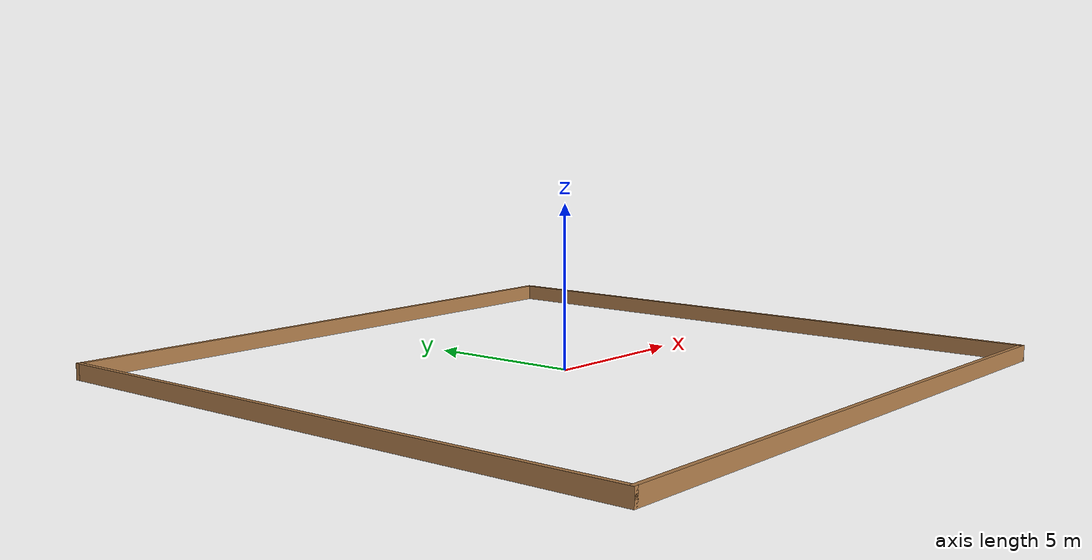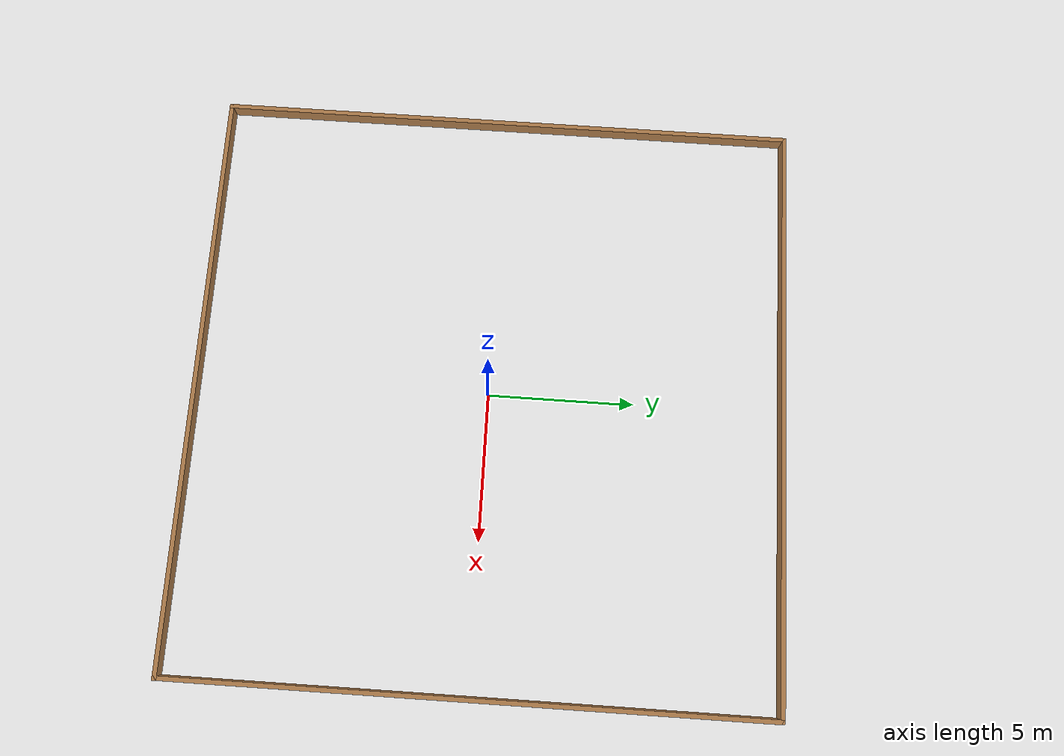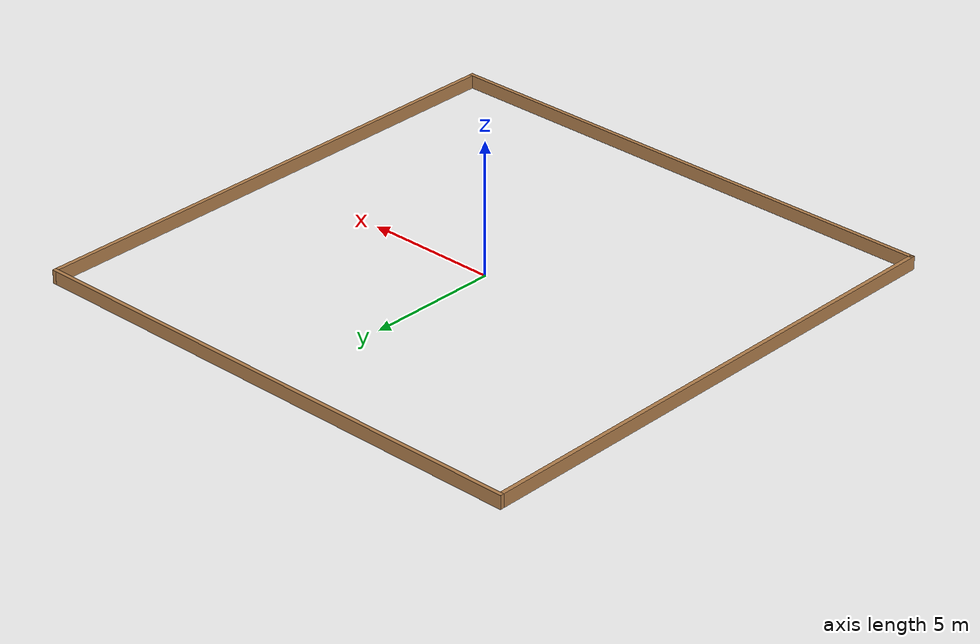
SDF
<?xml version='1.0'?>
<sdf version='1.6'>
  <model name='Walls'>
    <pose frame=''>0 0 0 0 -0 0</pose>
    <link name='Wall_2'>
      <collision name='Wall_2_Collision'>
        <geometry>
          <box>
            <size>20.15 0.15 0.5</size>
          </box>
        </geometry>
        <pose frame=''>0 0 0.25 0 -0 0</pose>
      </collision>
      <visual name='Wall_2_Visual'>
        <pose frame=''>0 0 0.25 0 -0 0</pose>
        <geometry>
          <box>
            <size>20.15 0.15 0.5</size>
          </box>
        </geometry>
        <material>
          <script>
            <uri>file://media/materials/scripts/gazebo.material</uri>
            <name>Gazebo/Wood</name>
          </script>
          <ambient>1 1 1 1</ambient>
        </material>
        <meta>
          <layer>0</layer>
        </meta>
      </visual>
      <pose frame=''>0 -10 0 0 -0 0</pose>
    </link>
    <link name='Wall_3'>
      <collision name='Wall_3_Collision'>
        <geometry>
          <box>
            <size>20.15 0.15 0.5</size>
          </box>
        </geometry>
        <pose frame=''>0 0 0.25 0 -0 0</pose>
      </collision>
      <visual name='Wall_3_Visual'>
        <pose frame=''>0 0 0.25 0 -0 0</pose>
        <geometry>
          <box>
            <size>20.15 0.15 0.5</size>
          </box>
        </geometry>
        <material>
          <script>
            <uri>file://media/materials/scripts/gazebo.material</uri>
            <name>Gazebo/Wood</name>
          </script>
          <ambient>1 1 1 1</ambient>
        </material>
        <meta>
          <layer>0</layer>
        </meta>
      </visual>
      <pose frame=''>10 0 0 0 -0 1.5708</pose>
    </link>
    <link name='Wall_4'>
      <collision name='Wall_4_Collision'>
        <geometry>
          <box>
            <size>20.15 0.15 0.5</size>
          </box>
        </geometry>
        <pose frame=''>0 0 0.25 0 -0 0</pose>
      </collision>
      <visual name='Wall_4_Visual'>
        <pose frame=''>0 0 0.25 0 -0 0</pose>
        <geometry>
          <box>
            <size>20.15 0.15 0.5</size>
          </box>
        </geometry>
        <material>
          <script>
            <uri>file://media/materials/scripts/gazebo.material</uri>
            <name>Gazebo/Wood</name>
          </script>
          <ambient>1 1 1 1</ambient>
        </material>
        <meta>
          <layer>0</layer>
        </meta>
      </visual>
      <pose frame=''>0 10 0 0 -0 3.14159</pose>
    </link>
    <link name='Wall_5'>
      <collision name='Wall_5_Collision'>
        <geometry>
          <box>
            <size>20.15 0.15 0.5</size>
          </box>
        </geometry>
        <pose frame=''>0 0 0.25 0 -0 0</pose>
      </collision>
      <visual name='Wall_5_Visual'>
        <pose frame=''>0 0 0.25 0 -0 0</pose>
        <geometry>
          <box>
            <size>20.15 0.15 0.5</size>
          </box>
        </geometry>
        <material>
          <script>
            <uri>file://media/materials/scripts/gazebo.material</uri>
            <name>Gazebo/Wood</name>
          </script>
          <ambient>1 1 1 1</ambient>
        </material>
        <meta>
          <layer>0</layer>
        </meta>
      </visual>
      <pose frame=''>-10 0 0 0 -0 -1.5708</pose>
    </link>
    <static>1</static>
  </model>
</sdf>
